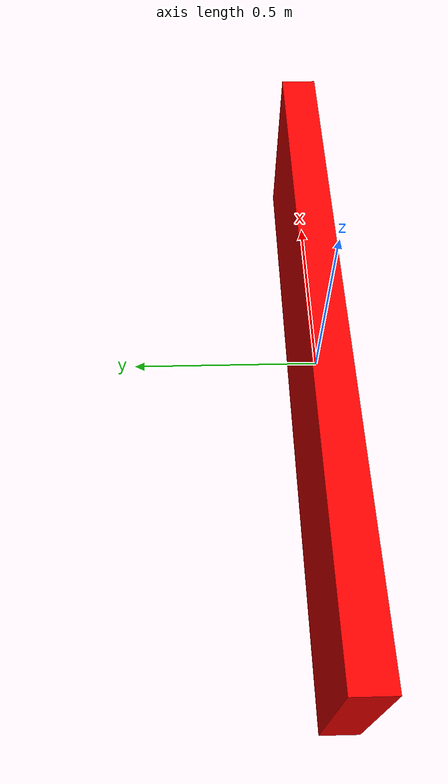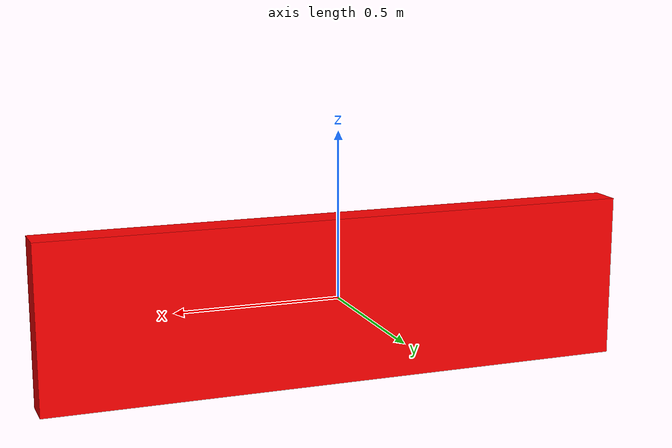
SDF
<?xml version="1.0" ?>
<sdf version="1.5">
  <model name="barrier_w_reflector">
    <static>1</static>
    <pose frame="">0 0 0 0 0 0</pose>

    <link name="link">
      <inertial>
        <mass>1</mass>
        <inertia>
          <ixx>0</ixx><ixy>0</ixy><ixz>0</ixz>
          <iyy>0</iyy><iyz>0</iyz><izz>0</izz>
        </inertia>
      </inertial>

      <collision name="collision">
        <!-- reflector cho LiDAR -->
        <laser_retro>1000.0</laser_retro>
        <geometry>
          <box>
            <!-- size: 1.8 m × 0.1 m × 0.5 m -->
            <size>1.8 0.1 0.5</size>
          </box>
        </geometry>
        <max_contacts>10</max_contacts>
        <surface>
          <contact><ode/></contact>
          <bounce/>
          <friction>
            <torsional><ode/></torsional>
            <ode/>
          </friction>
        </surface>
      </collision>

      <visual name="visual">
        <geometry>
          <box>
            <size>1.8 0.1 0.5</size>
          </box>
        </geometry>
        <material>
          <ambient>1 0 0 1</ambient>
          <diffuse>1 0 0 1</diffuse>
          <specular>1 0 0 1</specular>
          <emissive>1 0 0 1</emissive>
        </material>
        <laser_retro>1000.0</laser_retro>
      </visual>

      <self_collide>0</self_collide>
      <kinematic>0</kinematic>
      <gravity>1</gravity>
    </link>
  </model>
</sdf>
